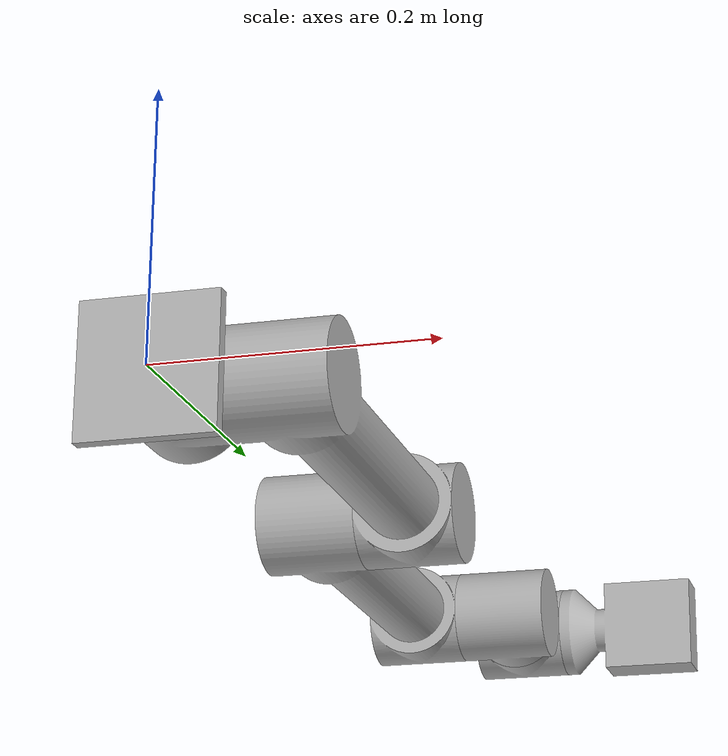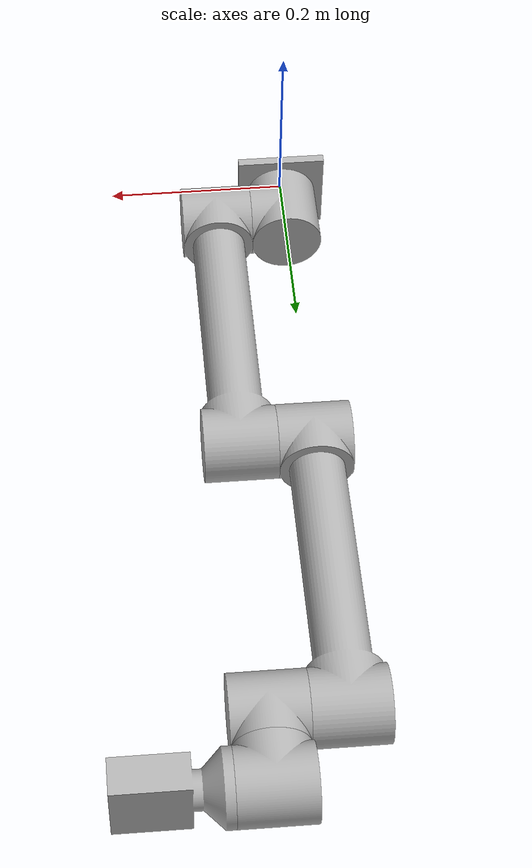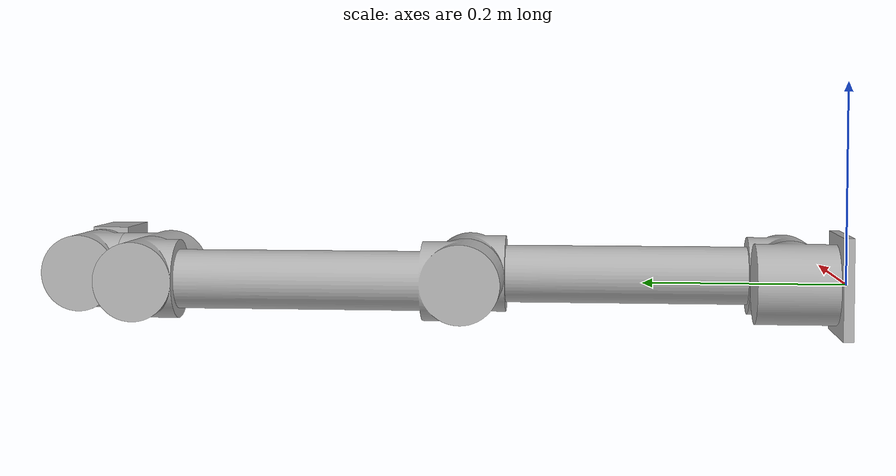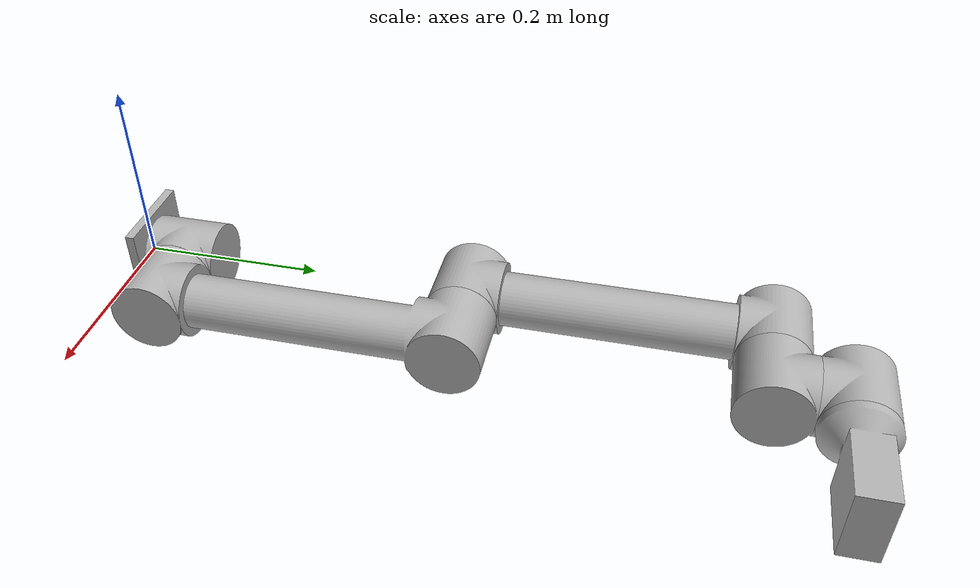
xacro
<?xml version="1.0" ?>
<robot name="Proto1-CopyForExport" xmlns:xacro="http://www.ros.org/wiki/xacro">

<xacro:include filename="$(find Proto1-CopyForExport_description)/urdf/materials.xacro" />
<xacro:include filename="$(find Proto1-CopyForExport_description)/urdf/Proto1-CopyForExport.trans" />
<xacro:include filename="$(find Proto1-CopyForExport_description)/urdf/Proto1-CopyForExport.gazebo" />
<link name="base_link">
  <inertial>
    <origin xyz="0.0 -8.459899447643696e-18 0.005000000000000004" rpy="0 0 0"/>
    <mass value="0.27"/>
    <inertia ixx="0.000227" iyy="0.000227" izz="0.00045" ixy="0.0" iyz="-0.0" ixz="0.0"/>
  </inertial>
  <visual>
    <origin xyz="0 0 0" rpy="0 0 0"/>
    <geometry>
      <mesh filename="file://$(find Proto1-CopyForExport_description)/meshes/base_link.stl" scale="0.001 0.001 0.001"/>
    </geometry>
    <material name="silver"/>
  </visual>
  <collision>
    <origin xyz="0 0 0" rpy="0 0 0"/>
    <geometry>
      <mesh filename="file://$(find Proto1-CopyForExport_description)/meshes/base_link.stl" scale="0.001 0.001 0.001"/>
    </geometry>
  </collision>
</link>

<link name="Base_Rotating_1">
  <inertial>
    <origin xyz="0.0023243126051587944 -1.7241650868930277e-17 0.04000000000000004" rpy="0 0 0"/>
    <mass value="3.395275114157203"/>
    <inertia ixx="0.003209" iyy="0.003258" izz="0.00298" ixy="0.0" iyz="-0.0" ixz="0.0"/>
  </inertial>
  <visual>
    <origin xyz="-0.0 0.0 -0.01" rpy="0 0 0"/>
    <geometry>
      <mesh filename="file://$(find Proto1-CopyForExport_description)/meshes/Base_Rotating_1.stl" scale="0.001 0.001 0.001"/>
    </geometry>
    <material name="silver"/>
  </visual>
  <collision>
    <origin xyz="-0.0 0.0 -0.01" rpy="0 0 0"/>
    <geometry>
      <mesh filename="file://$(find Proto1-CopyForExport_description)/meshes/Base_Rotating_1.stl" scale="0.001 0.001 0.001"/>
    </geometry>
  </collision>
</link>

<link name="Arm1_1">
  <inertial>
    <origin xyz="0.03999999999999999 -1.1934897514720435e-16 0.16500000000000015" rpy="0 0 0"/>
    <mass value="12.339388252717375"/>
    <inertia ixx="0.215809" iyy="0.216365" izz="0.008914" ixy="0.0" iyz="0.0" ixz="-0.0"/>
  </inertial>
  <visual>
    <origin xyz="-0.04 0.0 -0.05" rpy="0 0 0"/>
    <geometry>
      <mesh filename="file://$(find Proto1-CopyForExport_description)/meshes/Arm1_1.stl" scale="0.001 0.001 0.001"/>
    </geometry>
    <material name="silver"/>
  </visual>
  <collision>
    <origin xyz="-0.04 0.0 -0.05" rpy="0 0 0"/>
    <geometry>
      <mesh filename="file://$(find Proto1-CopyForExport_description)/meshes/Arm1_1.stl" scale="0.001 0.001 0.001"/>
    </geometry>
  </collision>
</link>

<link name="Arm_2_1">
  <inertial>
    <origin xyz="-0.04000000000000001 -3.025357742103552e-16 0.16500000000000037" rpy="0 0 0"/>
    <mass value="12.339388252717375"/>
    <inertia ixx="0.215809" iyy="0.216365" izz="0.008914" ixy="0.0" iyz="0.0" ixz="-0.0"/>
  </inertial>
  <visual>
    <origin xyz="-0.04 0.0 -0.38" rpy="0 0 0"/>
    <geometry>
      <mesh filename="file://$(find Proto1-CopyForExport_description)/meshes/Arm_2_1.stl" scale="0.001 0.001 0.001"/>
    </geometry>
    <material name="silver"/>
  </visual>
  <collision>
    <origin xyz="-0.04 0.0 -0.38" rpy="0 0 0"/>
    <geometry>
      <mesh filename="file://$(find Proto1-CopyForExport_description)/meshes/Arm_2_1.stl" scale="0.001 0.001 0.001"/>
    </geometry>
  </collision>
</link>

<link name="Head_Sub-Rotation_1_1">
  <inertial>
    <origin xyz="0.040000000000000015 -4.2170423829401424e-16 0.0023243126051595286" rpy="0 0 0"/>
    <mass value="3.3952751141572017"/>
    <inertia ixx="0.00298" iyy="0.003258" izz="0.003209" ixy="-0.0" iyz="-0.0" ixz="0.0"/>
  </inertial>
  <visual>
    <origin xyz="-0.04 0.0 -0.71" rpy="0 0 0"/>
    <geometry>
      <mesh filename="file://$(find Proto1-CopyForExport_description)/meshes/Head_Sub-Rotation_1_1.stl" scale="0.001 0.001 0.001"/>
    </geometry>
    <material name="silver"/>
  </visual>
  <collision>
    <origin xyz="-0.04 0.0 -0.71" rpy="0 0 0"/>
    <geometry>
      <mesh filename="file://$(find Proto1-CopyForExport_description)/meshes/Head_Sub-Rotation_1_1.stl" scale="0.001 0.001 0.001"/>
    </geometry>
  </collision>
</link>

<link name="Head_Sub-Rotation_2_1">
  <inertial>
    <origin xyz="-5.551115123125783e-17 2.4921118911706276e-15 0.03767568739484206" rpy="0 0 0"/>
    <mass value="3.3952751141572017"/>
    <inertia ixx="0.00298" iyy="0.003258" izz="0.003209" ixy="0.0" iyz="-0.0" ixz="-0.0"/>
  </inertial>
  <visual>
    <origin xyz="-0.08 0.0 -0.75" rpy="0 0 0"/>
    <geometry>
      <mesh filename="file://$(find Proto1-CopyForExport_description)/meshes/Head_Sub-Rotation_2_1.stl" scale="0.001 0.001 0.001"/>
    </geometry>
    <material name="silver"/>
  </visual>
  <collision>
    <origin xyz="-0.08 0.0 -0.75" rpy="0 0 0"/>
    <geometry>
      <mesh filename="file://$(find Proto1-CopyForExport_description)/meshes/Head_Sub-Rotation_2_1.stl" scale="0.001 0.001 0.001"/>
    </geometry>
  </collision>
</link>

<link name="Head_1">
  <inertial>
    <origin xyz="0.05886046197196568 2.722400939528098e-16 5.551115123125783e-16" rpy="0 0 0"/>
    <mass value="2.9631780901195146"/>
    <inertia ixx="0.00192" iyy="0.00452" izz="0.005324" ixy="0.0" iyz="-0.0" ixz="0.0"/>
  </inertial>
  <visual>
    <origin xyz="-0.12 -0.0 -0.79" rpy="0 0 0"/>
    <geometry>
      <mesh filename="file://$(find Proto1-CopyForExport_description)/meshes/Head_1.stl" scale="0.001 0.001 0.001"/>
    </geometry>
    <material name="silver"/>
  </visual>
  <collision>
    <origin xyz="-0.12 -0.0 -0.79" rpy="0 0 0"/>
    <geometry>
      <mesh filename="file://$(find Proto1-CopyForExport_description)/meshes/Head_1.stl" scale="0.001 0.001 0.001"/>
    </geometry>
  </collision>
</link>

<joint name="StaticBaseToRotatingBase" type="continuous">
  <origin xyz="0.0 0.0 0.01" rpy="0 0 0"/>
  <parent link="base_link"/>
  <child link="Base_Rotating_1"/>
  <axis xyz="0.0 -0.0 1.0"/>
</joint>

<joint name="RotatingBaseToArm1" type="revolute">
  <origin xyz="0.04 0.0 0.04" rpy="0 0 0"/>
  <parent link="Base_Rotating_1"/>
  <child link="Arm1_1"/>
  <axis xyz="1.0 0.0 0.0"/>
  <limit upper="1.570796" lower="-1.570796" effort="100" velocity="100"/>
</joint>

<joint name="Arm1ToArm2" type="continuous">
  <origin xyz="0.0 0.0 0.33" rpy="0 0 0"/>
  <parent link="Arm1_1"/>
  <child link="Arm_2_1"/>
  <axis xyz="-1.0 0.0 0.0"/>
</joint>

<joint name="Arm2ToSubHead1" type="continuous">
  <origin xyz="0.0 0.0 0.33" rpy="0 0 0"/>
  <parent link="Arm_2_1"/>
  <child link="Head_Sub-Rotation_1_1"/>
  <axis xyz="1.0 0.0 0.0"/>
</joint>

<joint name="SubHead1ToSubHead2" type="continuous">
  <origin xyz="0.04 0.0 0.04" rpy="0 0 0"/>
  <parent link="Head_Sub-Rotation_1_1"/>
  <child link="Head_Sub-Rotation_2_1"/>
  <axis xyz="0.0 -0.0 1.0"/>
</joint>

<joint name="SubHead2ToHead" type="continuous">
  <origin xyz="0.04 0.0 0.04" rpy="0 0 0"/>
  <parent link="Head_Sub-Rotation_2_1"/>
  <child link="Head_1"/>
  <axis xyz="1.0 0.0 0.0"/>
</joint>

</robot>

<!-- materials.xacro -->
<robot name="Proto1-CopyForExport" xmlns:xacro="http://www.ros.org/wiki/xacro" >

<material name="silver">
  <color rgba="0.700 0.700 0.700 1.000"/>
</material>

</robot>

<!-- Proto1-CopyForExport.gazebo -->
<robot name="Proto1-CopyForExport" xmlns:xacro="http://www.ros.org/wiki/xacro" >

<xacro:property name="body_color" value="Gazebo/Silver" />

<gazebo>
  <plugin name="control" filename="libgazebo_ros_control.so"/>
</gazebo>
<gazebo reference="base_link">
  <material>${body_color}</material>
  <mu1>0.2</mu1>
  <mu2>0.2</mu2>
  <self_collide>true</self_collide>
  <gravity>true</gravity>
</gazebo>

<gazebo reference="Base_Rotating_1">
  <material>${body_color}</material>
  <mu1>0.2</mu1>
  <mu2>0.2</mu2>
  <self_collide>true</self_collide>
</gazebo>

<gazebo reference="Arm1_1">
  <material>${body_color}</material>
  <mu1>0.2</mu1>
  <mu2>0.2</mu2>
  <self_collide>true</self_collide>
</gazebo>

<gazebo reference="Arm_2_1">
  <material>${body_color}</material>
  <mu1>0.2</mu1>
  <mu2>0.2</mu2>
  <self_collide>true</self_collide>
</gazebo>

<gazebo reference="Head_Sub-Rotation_1_1">
  <material>${body_color}</material>
  <mu1>0.2</mu1>
  <mu2>0.2</mu2>
  <self_collide>true</self_collide>
</gazebo>

<gazebo reference="Head_Sub-Rotation_2_1">
  <material>${body_color}</material>
  <mu1>0.2</mu1>
  <mu2>0.2</mu2>
  <self_collide>true</self_collide>
</gazebo>

<gazebo reference="Head_1">
  <material>${body_color}</material>
  <mu1>0.2</mu1>
  <mu2>0.2</mu2>
  <self_collide>true</self_collide>
</gazebo>

</robot>
